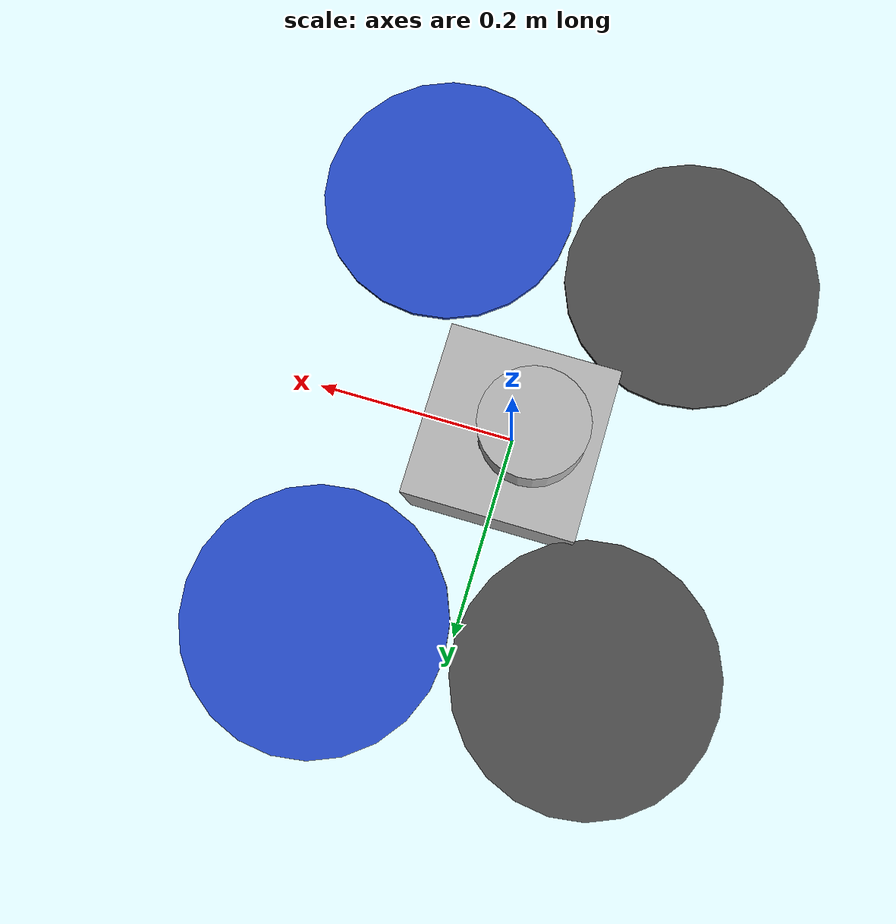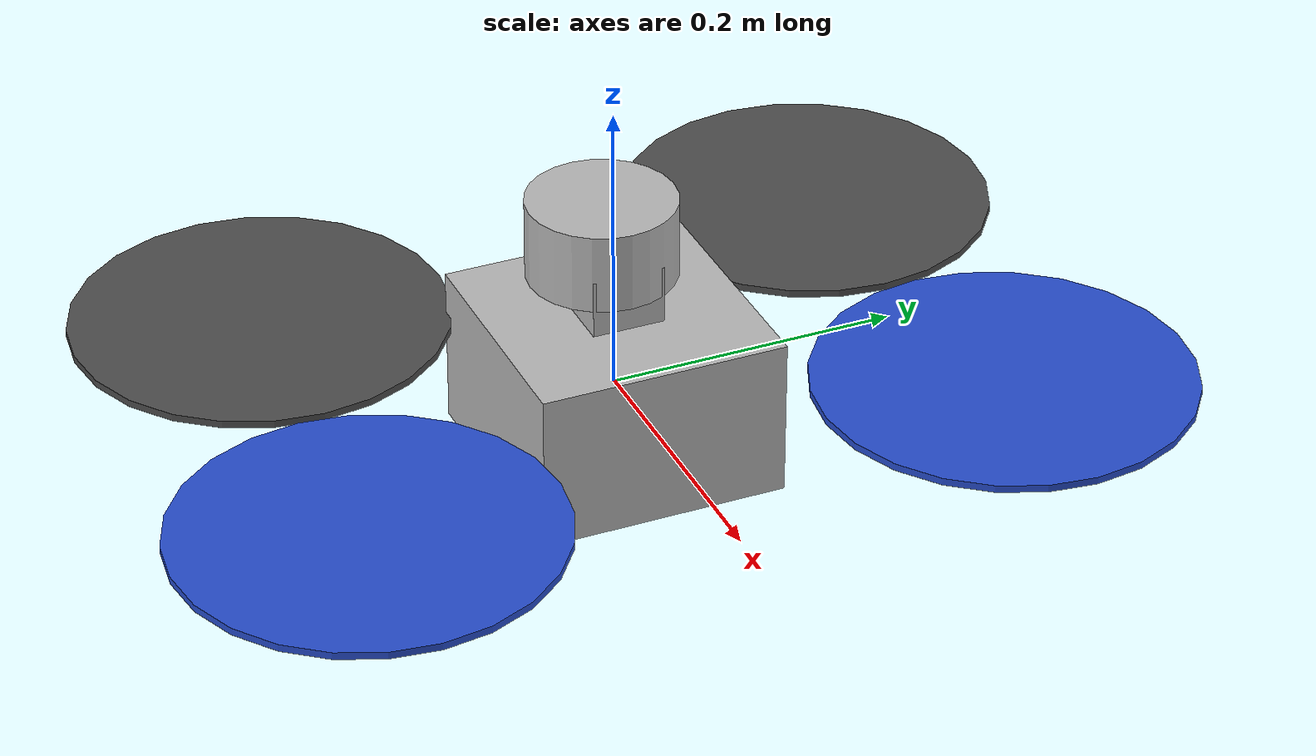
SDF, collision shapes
<sdf version='1.6'>
  <model name='suyu_vins_lidar'>
    <link name='base_link'>
      <pose frame=''>0 0 0 0 -0 0</pose>
      <inertial>
        <pose frame=''>0 0 -0 0 -0 0</pose>
        <mass>1.50001</mass>
        <inertia>
          <ixx>0.0347573</ixx>
          <ixy>0</ixy>
          <ixz>0</ixz>
          <iyy>0.0458939</iyy>
          <iyz>0</iyz>
          <izz>0.097701</izz>
        </inertia>
      </inertial>
      <collision name='base_link_fixed_joint_lump__/camera_red_iris_link_collision'>
        <pose frame=''>0 0 0.07 3.14159 1.57079 3.14159</pose>
        <geometry>
          <box>
            <size>0.05 0.05 0.05</size>
          </box>
        </geometry>
        <surface>
          <contact>
            <ode/>
          </contact>
          <friction>
            <ode/>
          </friction>
        </surface>
      </collision>
      <collision name='base_link_inertia_collision_1'>
        <pose frame=''>0 0 0 0 -0 0</pose>
        <geometry>
          <box>
            <size>0.17 0.17 0.11</size>                            <!--这里改变飞机尺寸（苏雨）-->
          </box>
        </geometry>
        <surface>
          <contact>
            <ode>
              <min_depth>0.001</min_depth>
              <max_vel>0</max_vel>
            </ode>
          </contact>
          <friction>
            <ode/>
          </friction>
        </surface>
      </collision>
      <visual name='base_link_fixed_joint_lump__/camera_red_iris_link_visual'>
        <pose frame=''>0 0 -0.07 3.14159 6e-06 3.14159</pose>
        <geometry>
          <box>
            <size>0.05 0.05 0.05</size>
          </box>
        </geometry>
        <material>
          <script>
            <uri>__default__</uri>
            <name>__default__</name>
          </script>
        </material>
      </visual>
      <visual name='base_link_inertia_visual_1'>
        <pose frame=''>0 0 0 0 -0 0</pose>
        <geometry>
          <mesh>
            <scale>1 1 1</scale>
            <uri>model://rotors_description/meshes/iris.stl</uri>
          </mesh>
        </geometry>
        <material>
          <script>
            <name>Gazebo/DarkGrey</name>
            <uri>file://media/materials/scripts/gazebo.material</uri>
          </script>
        </material>
      </visual>
      <velocity_decay/>
      <gravity>1</gravity>
      <velocity_decay/>

      <sensor type="multicamera" name="stereo_camera_forward">
      <pose frame=''>0 0 0.3 0 0 0</pose>                          <!-- 这不一样（苏雨） -->
      <child>/multicamera_link</child>
      <parent>base_link</parent>
      <update_rate>30.0</update_rate>
      <camera name="right">
        <pose>0 0.12 0 0 0 0</pose>
        <horizontal_fov>1.5708</horizontal_fov>
        <image>
          <width>752</width>
          <height>480</height>
          <format>L8</format>
        </image>
        <clip>
          <near>0.02</near>
          <far>300</far>
        </clip>
        <noise>
          <type>gaussian</type>
          <mean>0.0</mean>
          <stddev>0.000</stddev>
        </noise>
      </camera>
      <camera name="left">
        <pose>0 0 0 0 0 0</pose>
        <horizontal_fov>1.5708</horizontal_fov>
        <image>
          <width>752</width>
          <height>480</height>
          <format>L8</format>
        </image>
        <clip>
          <near>0.02</near>
          <far>300</far>
        </clip>
        <noise>
          <type>gaussian</type>
          <mean>0.0</mean>
          <stddev>0.000</stddev>
        </noise>
      </camera>
      <plugin name="stereo_camera_controller" filename="libgazebo_ros_multicamera.so">
        <alwaysOn>true</alwaysOn>
        <updateRate>0.0</updateRate>
        <cameraName>gi/forward</cameraName>                            <!-- 这不一样（苏雨） -->
        <imageTopicName>image_raw</imageTopicName>
        <cameraInfoTopicName>camera_info</cameraInfoTopicName>
        <frameName>left_camera_optical_frame</frameName>
        <hackBaseline>0.05</hackBaseline>
        <Fx>376.0</Fx>
        <Fy>376.0</Fy>
        <Cx>376.0</Cx>
        <Cy>240.0</Cy>
        <distortionK1>0.0</distortionK1>
        <distortionK2>0.0</distortionK2>
        <distortionK3>0.0</distortionK3>
        <distortionT1>0.0</distortionT1>
        <distortionT2>0.0</distortionT2>
      </plugin>
    </sensor>

    <!--useless-->
    <sensor name="imu_sensor" type="imu">
      <always_on>true</always_on>
      <parent>base_link</parent>
      <update_rate>500</update_rate>
      <visualize>true</visualize>
      <topic>imu_stereo</topic>
      <plugin filename="libgazebo_ros_imu_sensor.so" name="imu_plugin">
        <topicName>imu_stereo</topicName>
        <bodyName>imu_link_stereo</bodyName>
        <updateRateHZ>500.0</updateRateHZ>
        <gaussianNoise>0.0</gaussianNoise>
        <xyzOffset>0 0 0</xyzOffset>
        <rpyOffset>0 0 0</rpyOffset>
        <frameName>imu_link_stereo</frameName>

        <gyroscopeNoiseDensity>0.0006</gyroscopeNoiseDensity>
        <gyroscopeRandomWalk>0.000003</gyroscopeRandomWalk>
        <gyroscopeTurnOnBiasSigma>0.03</gyroscopeTurnOnBiasSigma>

        <accelerometerNoiseDensity>0.002</accelerometerNoiseDensity>
        <accelerometerRandomWalk>0.00002</accelerometerRandomWalk>
        <accelerometerTurnOnBiasSigma>0.1</accelerometerTurnOnBiasSigma>

      </plugin>
      <pose>0 0 0 0 0 0</pose>
    </sensor>

    </link>

    <link name='/imu_link'>
      <pose frame=''>0 0 0 0 -0 0</pose>
      <inertial>
        <pose frame=''>0 0 0 0 -0 0</pose>
        <mass>0.015</mass>
        <inertia>
          <ixx>1e-05</ixx>
          <ixy>0</ixy>
          <ixz>0</ixz>
          <iyy>1e-05</iyy>
          <iyz>0</iyz>
          <izz>1e-05</izz>
        </inertia>
      </inertial>
    </link>
    <joint name='/imu_joint' type='revolute'>
      <child>/imu_link</child>
      <parent>base_link</parent>
      <axis>
        <xyz>1 0 0</xyz>
        <limit>
          <lower>0</lower>
          <upper>0</upper>
          <effort>0</effort>
          <velocity>0</velocity>
        </limit>
        <dynamics>
          <spring_reference>0</spring_reference>
          <spring_stiffness>0</spring_stiffness>
        </dynamics>
        <use_parent_model_frame>1</use_parent_model_frame>
      </axis>
    </joint>
    <link name='rotor_0'>
      <pose frame=''>0.13 -0.22 0.023 0 -0 0</pose>
      <inertial>
        <pose frame=''>0 0 0 0 -0 0</pose>
        <mass>0.005</mass>
        <inertia>
          <ixx>9.75e-07</ixx>
          <ixy>0</ixy>
          <ixz>0</ixz>
          <iyy>0.000273104</iyy>
          <iyz>0</iyz>
          <izz>0.000274004</izz>
        </inertia>
      </inertial>
      <collision name='rotor_0_collision'>
        <pose frame=''>0 0 0 0 -0 0</pose>
        <geometry>
          <cylinder>
            <length>0.005</length>
            <radius>0.128</radius>
          </cylinder>
        </geometry>
        <surface>
          <contact>
            <ode/>
          </contact>
          <friction>
            <ode/>
          </friction>
        </surface>
      </collision>
      <visual name='rotor_0_visual'>
        <pose frame=''>0 0 0 0 -0 0</pose>
        <geometry>
          <mesh>
            <scale>1 1 1</scale>
            <uri>model://rotors_description/meshes/iris_prop_ccw.dae</uri>
          </mesh>
        </geometry>
        <material>
          <script>
            <name>Gazebo/Blue</name>
            <uri>file://media/materials/scripts/gazebo.material</uri>
          </script>
        </material>
      </visual>
      <gravity>1</gravity>
      <velocity_decay/>
    </link>
    <joint name='rotor_0_joint' type='revolute'>
      <child>rotor_0</child>
      <parent>base_link</parent>
      <axis>
        <xyz>0 0 1</xyz>
        <limit>
          <lower>-1e+16</lower>
          <upper>1e+16</upper>
        </limit>
        <dynamics>
          <spring_reference>0</spring_reference>
          <spring_stiffness>0</spring_stiffness>
        </dynamics>
        <use_parent_model_frame>1</use_parent_model_frame>
      </axis>
    </joint>
    <link name='rotor_1'>
      <pose frame=''>-0.13 0.2 0.023 0 -0 0</pose>
      <inertial>
        <pose frame=''>0 0 0 0 -0 0</pose>
        <mass>0.005</mass>
        <inertia>
          <ixx>9.75e-07</ixx>
          <ixy>0</ixy>
          <ixz>0</ixz>
          <iyy>0.000273104</iyy>
          <iyz>0</iyz>
          <izz>0.000274004</izz>
        </inertia>
      </inertial>
      <collision name='rotor_1_collision'>
        <pose frame=''>0 0 0 0 -0 0</pose>
        <geometry>
          <cylinder>
            <length>0.005</length>
            <radius>0.128</radius>
          </cylinder>
        </geometry>
        <surface>
          <contact>
            <ode/>
          </contact>
          <friction>
            <ode/>
          </friction>
        </surface>
      </collision>
      <visual name='rotor_1_visual'>
        <pose frame=''>0 0 0 0 -0 0</pose>
        <geometry>
          <mesh>
            <scale>1 1 1</scale>
            <uri>model://rotors_description/meshes/iris_prop_ccw.dae</uri>
          </mesh>
        </geometry>
        <material>
          <script>
            <name>Gazebo/DarkGrey</name>
            <uri>file://media/materials/scripts/gazebo.material</uri>
          </script>
        </material>
      </visual>
      <gravity>1</gravity>
      <velocity_decay/>
    </link>
    <joint name='rotor_1_joint' type='revolute'>
      <child>rotor_1</child>
      <parent>base_link</parent>
      <axis>
        <xyz>0 0 1</xyz>
        <limit>
          <lower>-1e+16</lower>
          <upper>1e+16</upper>
        </limit>
        <dynamics>
          <spring_reference>0</spring_reference>
          <spring_stiffness>0</spring_stiffness>
        </dynamics>
        <use_parent_model_frame>1</use_parent_model_frame>
      </axis>
    </joint>
    <link name='rotor_2'>
      <pose frame=''>0.13 0.22 0.023 0 -0 0</pose>
      <inertial>
        <pose frame=''>0 0 0 0 -0 0</pose>
        <mass>0.005</mass>
        <inertia>
          <ixx>9.75e-07</ixx>
          <ixy>0</ixy>
          <ixz>0</ixz>
          <iyy>0.000273104</iyy>
          <iyz>0</iyz>
          <izz>0.000274004</izz>
        </inertia>
      </inertial>
      <collision name='rotor_2_collision'>
        <pose frame=''>0 0 0 0 -0 0</pose>
        <geometry>
          <cylinder>
            <length>0.005</length>
            <radius>0.128</radius>
          </cylinder>
        </geometry>
        <surface>
          <contact>
            <ode/>
          </contact>
          <friction>
            <ode/>
          </friction>
        </surface>
      </collision>
      <visual name='rotor_2_visual'>
        <pose frame=''>0 0 0 0 -0 0</pose>
        <geometry>
          <mesh>
            <scale>1 1 1</scale>
            <uri>model://rotors_description/meshes/iris_prop_cw.dae</uri>
          </mesh>
        </geometry>
        <material>
          <script>
            <name>Gazebo/Blue</name>
            <uri>file://media/materials/scripts/gazebo.material</uri>
          </script>
        </material>
      </visual>
      <gravity>1</gravity>
      <velocity_decay/>
    </link>
    <joint name='rotor_2_joint' type='revolute'>
      <child>rotor_2</child>
      <parent>base_link</parent>
      <axis>
        <xyz>0 0 1</xyz>
        <limit>
          <lower>-1e+16</lower>
          <upper>1e+16</upper>
        </limit>
        <dynamics>
          <spring_reference>0</spring_reference>
          <spring_stiffness>0</spring_stiffness>
        </dynamics>
        <use_parent_model_frame>1</use_parent_model_frame>
      </axis>
    </joint>
    <link name='rotor_3'>
      <pose frame=''>-0.13 -0.2 0.023 0 -0 0</pose>
      <inertial>
        <pose frame=''>0 0 0 0 -0 0</pose>
        <mass>0.005</mass>
        <inertia>
          <ixx>9.75e-07</ixx>
          <ixy>0</ixy>
          <ixz>0</ixz>
          <iyy>0.000273104</iyy>
          <iyz>0</iyz>
          <izz>0.000274004</izz>
        </inertia>
      </inertial>
      <collision name='rotor_3_collision'>
        <pose frame=''>0 0 0 0 -0 0</pose>
        <geometry>
          <cylinder>
            <length>0.005</length>
            <radius>0.128</radius>
          </cylinder>
        </geometry>
        <surface>
          <contact>
            <ode/>
          </contact>
          <friction>
            <ode/>
          </friction>
        </surface>
      </collision>
      <visual name='rotor_3_visual'>
        <pose frame=''>0 0 0 0 -0 0</pose>
        <geometry>
          <mesh>
            <scale>1 1 1</scale>
            <uri>model://rotors_description/meshes/iris_prop_cw.dae</uri>
          </mesh>
        </geometry>
        <material>
          <script>
            <name>Gazebo/DarkGrey</name>
            <uri>file://media/materials/scripts/gazebo.material</uri>
          </script>
        </material>
      </visual>
      <gravity>1</gravity>
      <velocity_decay/>
    </link>
    <joint name='rotor_3_joint' type='revolute'>
      <child>rotor_3</child>
      <parent>base_link</parent>
      <axis>
        <xyz>0 0 1</xyz>
        <limit>
          <lower>-1e+16</lower>
          <upper>1e+16</upper>
        </limit>
        <dynamics>
          <spring_reference>0</spring_reference>
          <spring_stiffness>0</spring_stiffness>
        </dynamics>
        <use_parent_model_frame>1</use_parent_model_frame>
      </axis>
    </joint>
    <plugin name='rosbag' filename='libgazebo_multirotor_base_plugin.so'>
      <robotNamespace/>
      <linkName>base_link</linkName>
      <rotorVelocitySlowdownSim>10</rotorVelocitySlowdownSim>
    </plugin>
    <plugin name='front_right_motor_model' filename='libgazebo_motor_model.so'>
      <robotNamespace/>
      <jointName>rotor_0_joint</jointName>
      <linkName>rotor_0</linkName>
      <turningDirection>ccw</turningDirection>
      <timeConstantUp>0.0125</timeConstantUp>
      <timeConstantDown>0.025</timeConstantDown>
      <maxRotVelocity>1100</maxRotVelocity>
      <motorConstant>8.54858e-06</motorConstant>
      <momentConstant>0.06</momentConstant>
      <commandSubTopic>/gazebo/command/motor_speed</commandSubTopic>
      <motorNumber>0</motorNumber>
      <rotorDragCoefficient>0.000806428</rotorDragCoefficient>
      <rollingMomentCoefficient>1e-06</rollingMomentCoefficient>
      <motorSpeedPubTopic>/motor_speed/0</motorSpeedPubTopic>
      <rotorVelocitySlowdownSim>10</rotorVelocitySlowdownSim>
    </plugin>
    <plugin name='back_left_motor_model' filename='libgazebo_motor_model.so'>
      <robotNamespace/>
      <jointName>rotor_1_joint</jointName>
      <linkName>rotor_1</linkName>
      <turningDirection>ccw</turningDirection>
      <timeConstantUp>0.0125</timeConstantUp>
      <timeConstantDown>0.025</timeConstantDown>
      <maxRotVelocity>1100</maxRotVelocity>
      <motorConstant>8.54858e-06</motorConstant>
      <momentConstant>0.06</momentConstant>
      <commandSubTopic>/gazebo/command/motor_speed</commandSubTopic>
      <motorNumber>1</motorNumber>
      <rotorDragCoefficient>0.000806428</rotorDragCoefficient>
      <rollingMomentCoefficient>1e-06</rollingMomentCoefficient>
      <motorSpeedPubTopic>/motor_speed/1</motorSpeedPubTopic>
      <rotorVelocitySlowdownSim>10</rotorVelocitySlowdownSim>
    </plugin>
    <plugin name='front_left_motor_model' filename='libgazebo_motor_model.so'>
      <robotNamespace/>
      <jointName>rotor_2_joint</jointName>
      <linkName>rotor_2</linkName>
      <turningDirection>cw</turningDirection>
      <timeConstantUp>0.0125</timeConstantUp>
      <timeConstantDown>0.025</timeConstantDown>
      <maxRotVelocity>1100</maxRotVelocity>
      <motorConstant>8.54858e-06</motorConstant>
      <momentConstant>0.06</momentConstant>
      <commandSubTopic>/gazebo/command/motor_speed</commandSubTopic>
      <motorNumber>2</motorNumber>
      <rotorDragCoefficient>0.000806428</rotorDragCoefficient>
      <rollingMomentCoefficient>1e-06</rollingMomentCoefficient>
      <motorSpeedPubTopic>/motor_speed/2</motorSpeedPubTopic>
      <rotorVelocitySlowdownSim>10</rotorVelocitySlowdownSim>
    </plugin>
    <plugin name='back_right_motor_model' filename='libgazebo_motor_model.so'>
      <robotNamespace/>
      <jointName>rotor_3_joint</jointName>
      <linkName>rotor_3</linkName>
      <turningDirection>cw</turningDirection>
      <timeConstantUp>0.0125</timeConstantUp>
      <timeConstantDown>0.025</timeConstantDown>
      <maxRotVelocity>1100</maxRotVelocity>
      <motorConstant>8.54858e-06</motorConstant>
      <momentConstant>0.06</momentConstant>
      <commandSubTopic>/gazebo/command/motor_speed</commandSubTopic>
      <motorNumber>3</motorNumber>
      <rotorDragCoefficient>0.000806428</rotorDragCoefficient>
      <rollingMomentCoefficient>1e-06</rollingMomentCoefficient>
      <motorSpeedPubTopic>/motor_speed/3</motorSpeedPubTopic>
      <rotorVelocitySlowdownSim>10</rotorVelocitySlowdownSim>
    </plugin>

    <plugin name='gps_plugin' filename='libgazebo_gps_plugin.so'>
      <robotNamespace/>
      <gpsNoise>true</gpsNoise>
    </plugin>

    <plugin name='mavlink_interface' filename='libgazebo_mavlink_interface.so'>
      <robotNamespace/>
      <imuSubTopic>/imu</imuSubTopic>
      <gpsSubTopic>/gps</gpsSubTopic>
      <mavlink_addr>INADDR_ANY</mavlink_addr>
      <mavlink_udp_port>14560</mavlink_udp_port>
      <serialEnabled>0</serialEnabled>
      <serialDevice>/dev/ttyACM0</serialDevice>
      <baudRate>921600</baudRate>
      <qgc_addr>INADDR_ANY</qgc_addr>
      <qgc_udp_port>14550</qgc_udp_port>
      <hil_mode>0</hil_mode>
      <hil_state_level>0</hil_state_level>
      <vehicle_is_tailsitter>0</vehicle_is_tailsitter>
      <send_odometry>0</send_odometry>
      <motorSpeedCommandPubTopic>/gazebo/command/motor_speed</motorSpeedCommandPubTopic>
      <control_channels>
        <channel name='rotor1'>
          <input_index>0</input_index>
          <input_offset>0</input_offset>
          <input_scaling>1000</input_scaling>
          <zero_position_disarmed>0</zero_position_disarmed>
          <zero_position_armed>100</zero_position_armed>
          <joint_control_type>velocity</joint_control_type>
        </channel>
        <channel name='rotor2'>
          <input_index>1</input_index>
          <input_offset>0</input_offset>
          <input_scaling>1000</input_scaling>
          <zero_position_disarmed>0</zero_position_disarmed>
          <zero_position_armed>100</zero_position_armed>
          <joint_control_type>velocity</joint_control_type>
        </channel>
        <channel name='rotor3'>
          <input_index>2</input_index>
          <input_offset>0</input_offset>
          <input_scaling>1000</input_scaling>
          <zero_position_disarmed>0</zero_position_disarmed>
          <zero_position_armed>100</zero_position_armed>
          <joint_control_type>velocity</joint_control_type>
        </channel>
        <channel name='rotor4'>
          <input_index>3</input_index>
          <input_offset>0</input_offset>
          <input_scaling>1000</input_scaling>
          <zero_position_disarmed>0</zero_position_disarmed>
          <zero_position_armed>100</zero_position_armed>
          <joint_control_type>velocity</joint_control_type>
        </channel>
        <channel name='rotor5'>
          <input_index>4</input_index>
          <input_offset>1</input_offset>
          <input_scaling>324.6</input_scaling>
          <zero_position_disarmed>0</zero_position_disarmed>
          <zero_position_armed>0</zero_position_armed>
          <joint_control_type>velocity</joint_control_type>
          <joint_control_pid>
            <p>0.1</p>
            <i>0</i>
            <d>0</d>
            <iMax>0.0</iMax>
            <iMin>0.0</iMin>
            <cmdMax>2</cmdMax>
            <cmdMin>-2</cmdMin>
          </joint_control_pid>
          <joint_name>zephyr_delta_wing::propeller_joint</joint_name>
        </channel>
        <channel name='rotor6'>
          <input_index>5</input_index>
          <input_offset>0</input_offset>
          <input_scaling>0.524</input_scaling>
          <zero_position_disarmed>0</zero_position_disarmed>
          <zero_position_armed>0</zero_position_armed>
          <joint_control_type>position</joint_control_type>
          <joint_name>zephyr_delta_wing::flap_left_joint</joint_name>
          <joint_control_pid>
            <p>10.0</p>
            <i>0</i>
            <d>0</d>
            <iMax>0</iMax>
            <iMin>0</iMin>
            <cmdMax>20</cmdMax>
            <cmdMin>-20</cmdMin>
          </joint_control_pid>
        </channel>
        <channel name='rotor7'>
          <input_index>6</input_index>
          <input_offset>0</input_offset>
          <input_scaling>0.524</input_scaling>
          <zero_position_disarmed>0</zero_position_disarmed>
          <zero_position_armed>0</zero_position_armed>
          <joint_control_type>position</joint_control_type>
          <joint_name>zephyr_delta_wing::flap_right_joint</joint_name>
          <joint_control_pid>
            <p>10.0</p>
            <i>0</i>
            <d>0</d>
            <iMax>0</iMax>
            <iMin>0</iMin>
            <cmdMax>20</cmdMax>
            <cmdMin>-20</cmdMin>
          </joint_control_pid>
        </channel>
        <channel name='rotor8'>
          <input_index>7</input_index>
          <input_offset>0</input_offset>
          <input_scaling>0.524</input_scaling>
          <zero_position_disarmed>0</zero_position_disarmed>
          <zero_position_armed>0</zero_position_armed>
          <joint_control_type>position</joint_control_type>
        </channel>
      </control_channels>
    </plugin>
    <static>0</static>
    <plugin name='rotors_gazebo_imu_plugin' filename='libgazebo_imu_plugin.so'>
      <robotNamespace/>
      <linkName>/imu_link</linkName>
      <imuTopic>/imu</imuTopic>
      <gyroscopeNoiseDensity>0.0003394</gyroscopeNoiseDensity>
      <gyroscopeRandomWalk>3.8785e-05</gyroscopeRandomWalk>
      <gyroscopeBiasCorrelationTime>1000.0</gyroscopeBiasCorrelationTime>
      <gyroscopeTurnOnBiasSigma>0.0087</gyroscopeTurnOnBiasSigma>
      <accelerometerNoiseDensity>0.004</accelerometerNoiseDensity>
      <accelerometerRandomWalk>0.006</accelerometerRandomWalk>
      <accelerometerBiasCorrelationTime>300.0</accelerometerBiasCorrelationTime>
      <accelerometerTurnOnBiasSigma>0.196</accelerometerTurnOnBiasSigma>

      <update_rate>500</update_rate>
      <updateRateHZ>500.0</updateRateHZ>

    </plugin>

    <include>
      <uri>model://rplidar</uri>
      <pose>0 0 0.1 0 0 0</pose>
    </include>
    <joint name="rplidar_joint" type="revolute">
      <child>rplidar::link</child>
      <parent>iris_vision::base_link</parent>
      <axis>
        <xyz>0 0 1</xyz>
        <limit>
          <upper>0</upper>
          <lower>0</lower>
        </limit>
      </axis>
    </joint>

  </model>
</sdf>

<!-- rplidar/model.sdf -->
<sdf version="1.5">
  <model name="rplidar">
    <link name="link">

 <inertial>
      <pose>0 0 0 0 0 0</pose>
      <inertia>
        <ixx>4.15e-6</ixx>
        <ixy>0.000</ixy>
        <ixz>0.000</ixz>
        <iyy>2.407e-6</iyy>
        <iyz>0.000</iyz>
        <izz>2.407e-6</izz>
      </inertia>
      <mass>0.125</mass>
    </inertial>

    <collision name="lidar_sensor_collision">
        <pose>-0.020 0 0.001 0 0 0</pose>
        <geometry>
          <cylinder>
            <radius>0.0508</radius>
            <length>0.055</length>
          </cylinder>
        </geometry>
      </collision>

      <visual name="lidar_sensor_visual">

        <geometry>
          <mesh>
            <uri>model://turtlebot3_burger/meshes/lds.dae</uri>
            <scale>0.001 0.001 0.001</scale>
          </mesh>
        </geometry>
      </visual>

      <sensor name="laser" type="ray">
        <always_on>1</always_on>
  <!--这里改变光束位置（苏雨）-->
        <pose>-0.022 0 0 0 0 0</pose>

        <ray>
          <scan>
            <horizontal>
              <samples>360</samples>
              <resolution>1.000000</resolution>
              <min_angle>0.000000</min_angle>
              <max_angle>6.280000</max_angle>
            </horizontal>
          </scan>
          <range>
            <min>0.180000</min>     <!--改这个值比机身面积大，避免飞行中激光干涉（苏雨）-->
            <max>5</max>
            <resolution>0.05</resolution>
          </range>
          <noise>
            <type>gaussian</type>
            <mean>0.0</mean>
            <stddev>0.01</stddev>
          </noise>
        </ray>
        <plugin name="laser" filename="libRayPlugin.so" />
        <plugin name="gazebo_ros_head_rplidar_controller" filename="libgazebo_ros_laser.so">
          <topicName>/scan</topicName>
          <frameName>/map</frameName>
        </plugin>
        <update_rate>5.5</update_rate>
        <visualize>true</visualize>
      </sensor>
    </link>
  </model>
</sdf>
